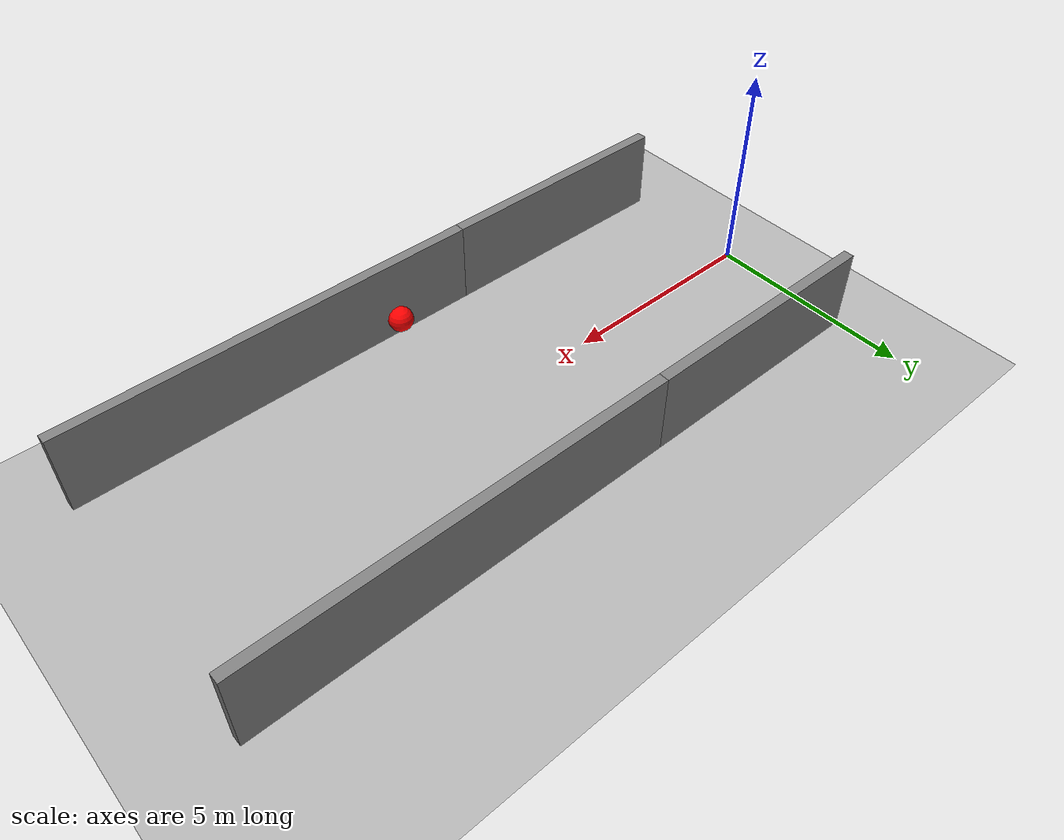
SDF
<?xml version="1.0"?>
<sdf version="1.8">
  <world name="moving_obstacles_world">
    <plugin filename="gz-sim-physics-system" name="gz::sim::systems::Physics"/>
    <plugin filename="gz-sim-sensors-system" name="gz::sim::systems::Sensors">
      <render_engine>ogre2</render_engine>
    </plugin>
    <plugin filename="gz-sim-scene-broadcaster-system" name="gz::sim::systems::SceneBroadcaster"/>
    <plugin filename="gz-sim-user-commands-system" name="gz::sim::systems::UserCommands"/>

    <light name="sun" type="directional">
      <pose>0 0 10 0 0 0</pose>
      <diffuse>0.8 0.8 0.8 1</diffuse>
      <specular>0.2 0.2 0.2 1</specular>
      <attenuation>
        <range>1000</range>
        <constant>0.9</constant>
        <linear>0.01</linear>
        <quadratic>0.001</quadratic>
      </attenuation>
      <direction>-0.5 0.1 -0.9</direction>
    </light>

    <!-- Base plane -->
    <model name="ground_plane">
      <static>true</static>
      <link name="link">
        <collision name="collision">
          <geometry>
            <plane>
              <normal>0 0 1</normal>
              <size>100 100</size>
            </plane>
          </geometry>
        </collision>
        <visual name="visual">
          <geometry>
            <plane>
              <normal>0 0 1</normal>
              <size>100 100</size>
            </plane>
          </geometry>
          <material>
            <ambient>0.7 0.7 0.7 1</ambient>
            <diffuse>0.7 0.7 0.7 1</diffuse>
          </material>
        </visual>
      </link>
    </model>

    <!-- Moving Pedestrian 1: Right-to-left crossing -->
    <model name="walker_center">
      <pose>8 -3.0 0.5 0 0 0</pose>
      <link name="link">
        <inertial>
          <mass>70.0</mass>
          <inertia>
            <ixx>2.8</ixx>
            <iyy>2.8</iyy>
            <izz>2.8</izz>
          </inertia>
        </inertial>
        <collision name="collision">
          <geometry>
            <sphere>
              <radius>0.3</radius>
            </sphere>
          </geometry>
        </collision>
        <visual name="visual">
          <geometry>
            <sphere>
              <radius>0.3</radius>
            </sphere>
          </geometry>
          <material>
            <ambient>1 0 0 1</ambient>
            <diffuse>1 0 0 1</diffuse>
          </material>
        </visual>
      </link>

      <!-- TrajectoryFollower plugin for movement -->
      <plugin filename="gz-sim-trajectory-follower-system"
              name="gz::sim::systems::TrajectoryFollower">
        <link_name>link</link_name>
        <loop>true</loop>
        <force>100</force>
        <torque>10</torque>
        <waypoints>
          <waypoint>0 -3</waypoint>
          <waypoint>0 3</waypoint>
        </waypoints>
      </plugin>

      <!-- PosePublisher plugin to publish pose -->
      <plugin filename="gz-sim-pose-publisher-system"
              name="gz::sim::systems::PosePublisher">
        <publish_link_pose>false</publish_link_pose>
        <publish_sensor_pose>false</publish_sensor_pose>
        <publish_collision_pose>false</publish_collision_pose>
        <publish_visual_pose>false</publish_visual_pose>
        <publish_nested_model_pose>false</publish_nested_model_pose>
        <publish_model_pose>true</publish_model_pose>
        <update_frequency>10</update_frequency>
      </plugin>
    </model>

    <!-- Moving Pedestrian 2: Left-to-right crossing (delayed) -->
    <model name="walker_east">
      <pose>8 3.0 0.5 0 0 0</pose>
      <link name="link">
        <inertial>
          <mass>70.0</mass>
          <inertia>
            <ixx>2.8</ixx>
            <iyy>2.8</iyy>
            <izz>2.8</izz>
          </inertia>
        </inertial>
        <collision name="collision">
          <geometry>
            <sphere>
              <radius>0.3</radius>
            </sphere>
          </geometry>
        </collision>
        <visual name="visual">
          <geometry>
            <sphere>
              <radius>0.3</radius>
            </sphere>
          </geometry>
          <material>
            <ambient>0 0 1 1</ambient>
            <diffuse>0 0 1 1</diffuse>
          </material>
        </visual>
      </link>

      <!-- TrajectoryFollower plugin for movement -->
      <plugin filename="gz-sim-trajectory-follower-system"
              name="gz::sim::systems::TrajectoryFollower">
        <link_name>link</link_name>
        <loop>true</loop>
        <force>100</force>
        <torque>10</torque>
        <range_tolerance>0.5</range_tolerance>
        <waypoints>
          <waypoint>0 3</waypoint>
          <waypoint>0 -3</waypoint>
        </waypoints>
      </plugin>

      <!-- PosePublisher plugin to publish pose -->
      <plugin filename="gz-sim-pose-publisher-system"
              name="gz::sim::systems::PosePublisher">
        <publish_link_pose>false</publish_link_pose>
        <publish_sensor_pose>false</publish_sensor_pose>
        <publish_collision_pose>false</publish_collision_pose>
        <publish_visual_pose>false</publish_visual_pose>
        <publish_nested_model_pose>false</publish_nested_model_pose>
        <publish_model_pose>true</publish_model_pose>
        <update_frequency>10</update_frequency>
      </plugin>
    </model>

    <!-- Main corridor side walls (left) -->
    <model name="left_wall_front">
      <static>true</static>
      <pose>3 3.25 1 0 0 0</pose>
      <link name="link">
        <collision name="collision">
          <geometry>
            <box>
              <size>6 0.25 2</size>
            </box>
          </geometry>
        </collision>
        <visual name="visual">
          <geometry>
            <box>
              <size>6 0.25 2</size>
            </box>
          </geometry>
          <material>
            <ambient>0.5 0.5 0.5 1</ambient>
            <diffuse>0.5 0.5 0.5 1</diffuse>
          </material>
        </visual>
      </link>
    </model>

    <model name="left_wall_mid">
      <static>true</static>
      <pose>11 3.25 1 0 0 0</pose>
      <link name="link">
        <collision name="collision">
          <geometry>
            <box>
              <size>10 0.25 2</size>
            </box>
          </geometry>
        </collision>
        <visual name="visual">
          <geometry>
            <box>
              <size>10 0.25 2</size>
            </box>
          </geometry>
          <material>
            <ambient>0.5 0.5 0.5 1</ambient>
            <diffuse>0.5 0.5 0.5 1</diffuse>
          </material>
        </visual>
      </link>
    </model>

    <!-- Right walls (mirror left) -->
    <model name="right_wall_front">
      <static>true</static>
      <pose>3 -3.25 1 0 0 0</pose>
      <link name="link">
        <collision name="collision">
          <geometry>
            <box>
              <size>6 0.25 2</size>
            </box>
          </geometry>
        </collision>
        <visual name="visual">
          <geometry>
            <box>
              <size>6 0.25 2</size>
            </box>
          </geometry>
          <material>
            <ambient>0.5 0.5 0.5 1</ambient>
            <diffuse>0.5 0.5 0.5 1</diffuse>
          </material>
        </visual>
      </link>
    </model>

    <model name="right_wall_mid">
      <static>true</static>
      <pose>11 -3.25 1 0 0 0</pose>
      <link name="link">
        <collision name="collision">
          <geometry>
            <box>
              <size>10 0.25 2</size>
            </box>
          </geometry>
        </collision>
        <visual name="visual">
          <geometry>
            <box>
              <size>10 0.25 2</size>
            </box>
          </geometry>
          <material>
            <ambient>0.5 0.5 0.5 1</ambient>
            <diffuse>0.5 0.5 0.5 1</diffuse>
          </material>
        </visual>
      </link>
    </model>

  </world>
</sdf>
